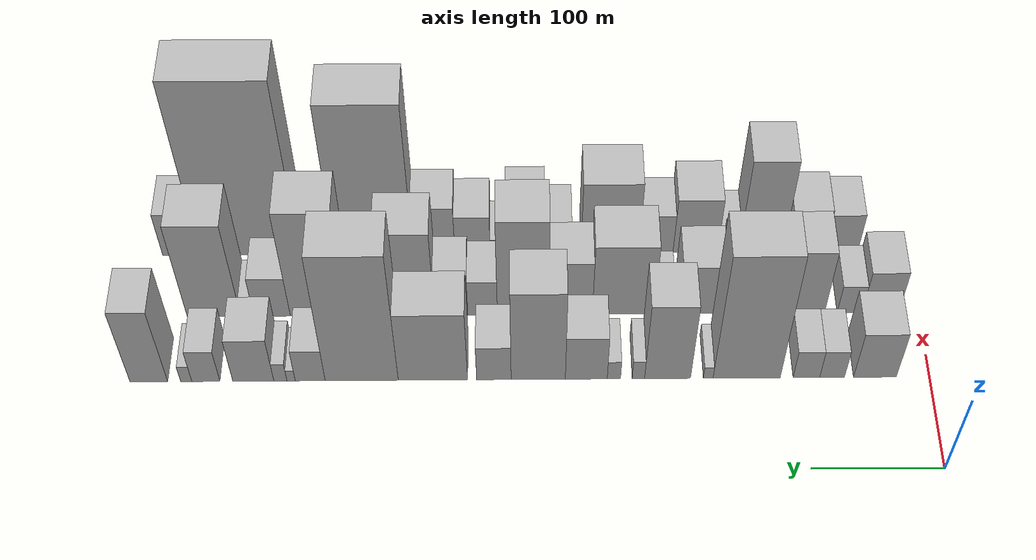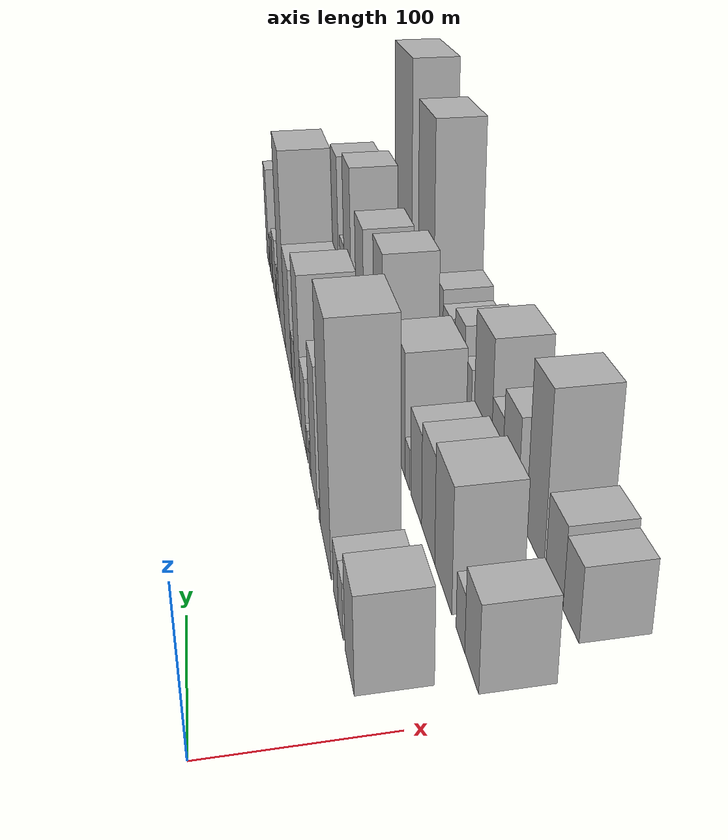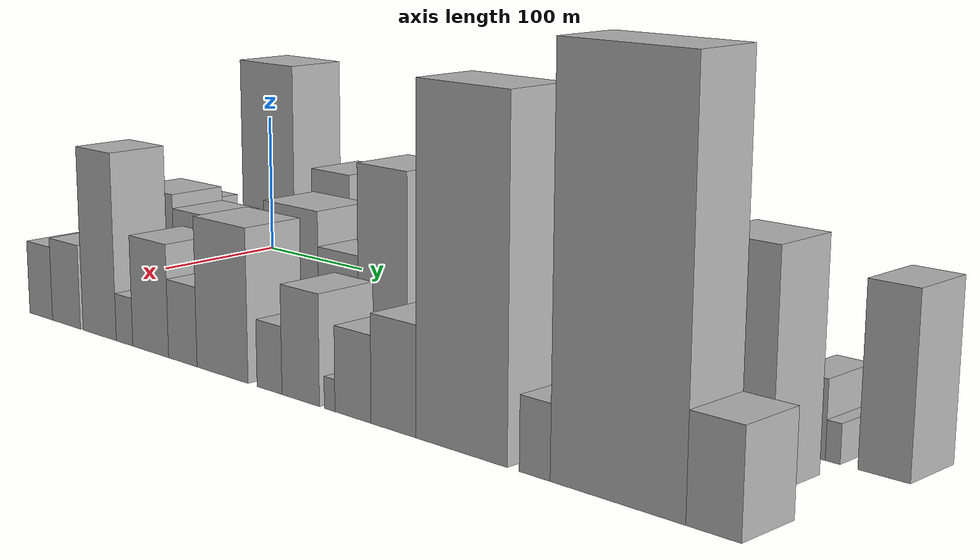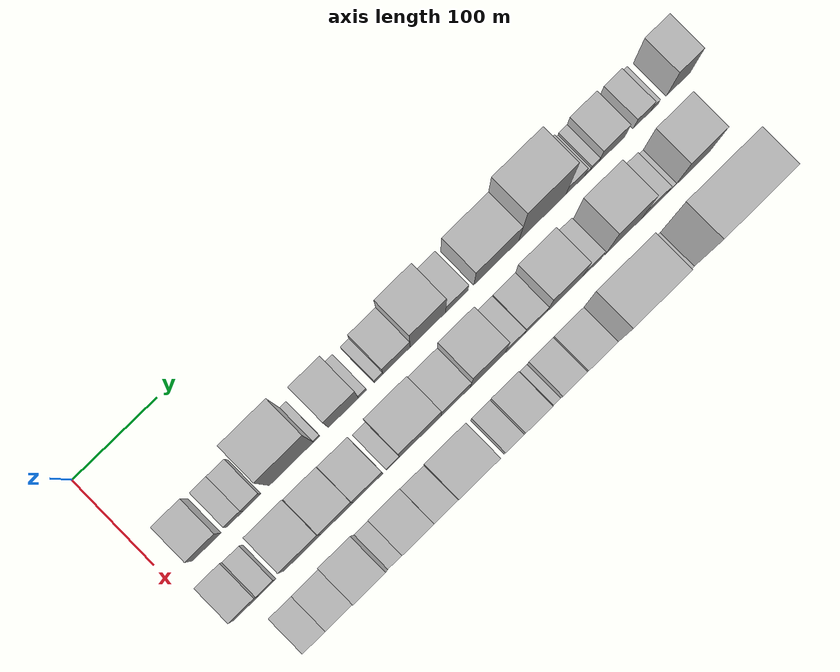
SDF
<sdf version="1.6">
 <world name="default">
  <model name="building_18">
   <static>1</static>
   <pose>100.0000 42.4086 0 0.000000 0.000000 0.000000</pose>
   <link name="link">
    <pose>0 0 30.00 0 0 0</pose>
    <collision name="collision"><geometry><box><size>40.0000 33.1775 60.0000</size></box></geometry></collision>
    <visual name="visual">
     <cast_shadows>0</cast_shadows>
     <geometry><box><size>40.0000 33.1775 60.0000</size></box></geometry>
     <material>
      <script>
       <uri>model://HANNAS_wall/materials/scripts</uri>
       <uri>model://HANNAS_wall/materials/textures</uri>
       <name>vrc/HANNAS_wall</name>
      </script>
     </material>
    </visual>
   </link>
  </model>
  <model name="building_19">
   <static>1</static>
   <pose>100.0000 75.5982 0 0.000000 0.000000 0.000000</pose>
   <link name="link">
    <pose>0 0 18.00 0 0 0</pose>
    <collision name="collision"><geometry><box><size>40.0000 19.2016 36.0000</size></box></geometry></collision>
    <visual name="visual">
     <cast_shadows>0</cast_shadows>
     <geometry><box><size>40.0000 19.2016 36.0000</size></box></geometry>
     <material>
      <script>
       <uri>model://HANNAS_wall/materials/scripts</uri>
       <uri>model://HANNAS_wall/materials/textures</uri>
       <name>vrc/HANNAS_wall</name>
      </script>
     </material>
    </visual>
   </link>
  </model>
  <model name="building_20">
   <static>1</static>
   <pose>100.0000 95.5008 0 0.000000 0.000000 0.000000</pose>
   <link name="link">
    <pose>0 0 18.00 0 0 0</pose>
    <collision name="collision"><geometry><box><size>40.0000 20.6037 36.0000</size></box></geometry></collision>
    <visual name="visual">
     <cast_shadows>0</cast_shadows>
     <geometry><box><size>40.0000 20.6037 36.0000</size></box></geometry>
     <material>
      <script>
       <uri>model://HANNAS_wall/materials/scripts</uri>
       <uri>model://HANNAS_wall/materials/textures</uri>
       <name>vrc/HANNAS_wall</name>
      </script>
     </material>
    </visual>
   </link>
  </model>
  <model name="building_21">
   <static>1</static>
   <pose>100.0000 141.8092 0 0.000000 0.000000 0.000000</pose>
   <link name="link">
    <pose>0 0 81.00 0 0 0</pose>
    <collision name="collision"><geometry><box><size>40.0000 52.0130 162.0000</size></box></geometry></collision>
    <visual name="visual">
     <cast_shadows>0</cast_shadows>
     <geometry><box><size>40.0000 52.0130 162.0000</size></box></geometry>
     <material>
      <script>
       <uri>model://HANNAS_wall/materials/scripts</uri>
       <uri>model://HANNAS_wall/materials/textures</uri>
       <name>vrc/HANNAS_wall</name>
      </script>
     </material>
    </visual>
   </link>
  </model>
  <model name="building_22">
   <static>1</static>
   <pose>100.0000 171.5599 0 0.000000 0.000000 0.000000</pose>
   <link name="link">
    <pose>0 0 7.50 0 0 0</pose>
    <collision name="collision"><geometry><box><size>40.0000 7.4884 15.0000</size></box></geometry></collision>
    <visual name="visual">
     <cast_shadows>0</cast_shadows>
     <geometry><box><size>40.0000 7.4884 15.0000</size></box></geometry>
     <material>
      <script>
       <uri>model://HANNAS_wall/materials/scripts</uri>
       <uri>model://HANNAS_wall/materials/textures</uri>
       <name>vrc/HANNAS_wall</name>
      </script>
     </material>
    </visual>
   </link>
  </model>
  <model name="building_23">
   <static>1</static>
   <pose>100.0000 203.0476 0 0.000000 0.000000 0.000000</pose>
   <link name="link">
    <pose>0 0 49.50 0 0 0</pose>
    <collision name="collision"><geometry><box><size>40.0000 35.4869 99.0000</size></box></geometry></collision>
    <visual name="visual">
     <cast_shadows>0</cast_shadows>
     <geometry><box><size>40.0000 35.4869 99.0000</size></box></geometry>
     <material>
      <script>
       <uri>model://HANNAS_wall/materials/scripts</uri>
       <uri>model://HANNAS_wall/materials/textures</uri>
       <name>vrc/HANNAS_wall</name>
      </script>
     </material>
    </visual>
   </link>
  </model>
  <model name="building_24">
   <static>1</static>
   <pose>100.0000 225.6169 0 0.000000 0.000000 0.000000</pose>
   <link name="link">
    <pose>0 0 12.00 0 0 0</pose>
    <collision name="collision"><geometry><box><size>40.0000 9.6518 24.0000</size></box></geometry></collision>
    <visual name="visual">
     <cast_shadows>0</cast_shadows>
     <geometry><box><size>40.0000 9.6518 24.0000</size></box></geometry>
     <material>
      <script>
       <uri>model://HANNAS_wall/materials/scripts</uri>
       <uri>model://HANNAS_wall/materials/textures</uri>
       <name>vrc/HANNAS_wall</name>
      </script>
     </material>
    </visual>
   </link>
  </model>
  <model name="building_25">
   <static>1</static>
   <pose>100.0000 244.6090 0 0.000000 0.000000 0.000000</pose>
   <link name="link">
    <pose>0 0 12.00 0 0 0</pose>
    <collision name="collision"><geometry><box><size>40.0000 10.3324 24.0000</size></box></geometry></collision>
    <visual name="visual">
     <cast_shadows>0</cast_shadows>
     <geometry><box><size>40.0000 10.3324 24.0000</size></box></geometry>
     <material>
      <script>
       <uri>model://HANNAS_wall/materials/scripts</uri>
       <uri>model://HANNAS_wall/materials/textures</uri>
       <name>vrc/HANNAS_wall</name>
      </script>
     </material>
    </visual>
   </link>
  </model>
  <model name="building_26">
   <static>1</static>
   <pose>100.0000 265.9587 0 0.000000 0.000000 0.000000</pose>
   <link name="link">
    <pose>0 0 28.50 0 0 0</pose>
    <collision name="collision"><geometry><box><size>40.0000 32.3671 57.0000</size></box></geometry></collision>
    <visual name="visual">
     <cast_shadows>0</cast_shadows>
     <geometry><box><size>40.0000 32.3671 57.0000</size></box></geometry>
     <material>
      <script>
       <uri>model://HANNAS_wall/materials/scripts</uri>
       <uri>model://HANNAS_wall/materials/textures</uri>
       <name>vrc/HANNAS_wall</name>
      </script>
     </material>
    </visual>
   </link>
  </model>
  <model name="building_27">
   <static>1</static>
   <pose>100.0000 303.1173 0 0.000000 0.000000 0.000000</pose>
   <link name="link">
    <pose>0 0 58.50 0 0 0</pose>
    <collision name="collision"><geometry><box><size>40.0000 41.9502 117.0000</size></box></geometry></collision>
    <visual name="visual">
     <cast_shadows>0</cast_shadows>
     <geometry><box><size>40.0000 41.9502 117.0000</size></box></geometry>
     <material>
      <script>
       <uri>model://HANNAS_wall/materials/scripts</uri>
       <uri>model://HANNAS_wall/materials/textures</uri>
       <name>vrc/HANNAS_wall</name>
      </script>
     </material>
    </visual>
   </link>
  </model>
  <model name="building_28">
   <static>1</static>
   <pose>100.0000 337.4223 0 0.000000 0.000000 0.000000</pose>
   <link name="link">
    <pose>0 0 22.50 0 0 0</pose>
    <collision name="collision"><geometry><box><size>40.0000 26.6598 45.0000</size></box></geometry></collision>
    <visual name="visual">
     <cast_shadows>0</cast_shadows>
     <geometry><box><size>40.0000 26.6598 45.0000</size></box></geometry>
     <material>
      <script>
       <uri>model://HANNAS_wall/materials/scripts</uri>
       <uri>model://HANNAS_wall/materials/textures</uri>
       <name>vrc/HANNAS_wall</name>
      </script>
     </material>
    </visual>
   </link>
  </model>
  <model name="building_29">
   <static>1</static>
   <pose>100.0000 384.5578 0 0.000000 0.000000 0.000000</pose>
   <link name="link">
    <pose>0 0 45.00 0 0 0</pose>
    <collision name="collision"><geometry><box><size>40.0000 53.6112 90.0000</size></box></geometry></collision>
    <visual name="visual">
     <cast_shadows>0</cast_shadows>
     <geometry><box><size>40.0000 53.6112 90.0000</size></box></geometry>
     <material>
      <script>
       <uri>model://HANNAS_wall/materials/scripts</uri>
       <uri>model://HANNAS_wall/materials/textures</uri>
       <name>vrc/HANNAS_wall</name>
      </script>
     </material>
    </visual>
   </link>
  </model>
  <model name="building_30">
   <static>1</static>
   <pose>100.0000 439.6174 0 0.000000 0.000000 0.000000</pose>
   <link name="link">
    <pose>0 0 82.50 0 0 0</pose>
    <collision name="collision"><geometry><box><size>40.0000 56.5080 165.0000</size></box></geometry></collision>
    <visual name="visual">
     <cast_shadows>0</cast_shadows>
     <geometry><box><size>40.0000 56.5080 165.0000</size></box></geometry>
     <material>
      <script>
       <uri>model://HANNAS_wall/materials/scripts</uri>
       <uri>model://HANNAS_wall/materials/textures</uri>
       <name>vrc/HANNAS_wall</name>
      </script>
     </material>
    </visual>
   </link>
  </model>
  <model name="building_31">
   <static>1</static>
   <pose>100.0000 479.4380 0 0.000000 0.000000 0.000000</pose>
   <link name="link">
    <pose>0 0 21.00 0 0 0</pose>
    <collision name="collision"><geometry><box><size>40.0000 23.1332 42.0000</size></box></geometry></collision>
    <visual name="visual">
     <cast_shadows>0</cast_shadows>
     <geometry><box><size>40.0000 23.1332 42.0000</size></box></geometry>
     <material>
      <script>
       <uri>model://HANNAS_wall/materials/scripts</uri>
       <uri>model://HANNAS_wall/materials/textures</uri>
       <name>vrc/HANNAS_wall</name>
      </script>
     </material>
    </visual>
   </link>
  </model>
  <model name="building_32">
   <static>1</static>
   <pose>100.0000 494.2023 0 0.000000 0.000000 0.000000</pose>
   <link name="link">
    <pose>0 0 7.50 0 0 0</pose>
    <collision name="collision"><geometry><box><size>40.0000 6.3954 15.0000</size></box></geometry></collision>
    <visual name="visual">
     <cast_shadows>0</cast_shadows>
     <geometry><box><size>40.0000 6.3954 15.0000</size></box></geometry>
     <material>
      <script>
       <uri>model://HANNAS_wall/materials/scripts</uri>
       <uri>model://HANNAS_wall/materials/textures</uri>
       <name>vrc/HANNAS_wall</name>
      </script>
     </material>
    </visual>
   </link>
  </model>
  <model name="building_33">
   <static>1</static>
   <pose>100.0000 502.4533 0 0.000000 0.000000 0.000000</pose>
   <link name="link">
    <pose>0 0 12.00 0 0 0</pose>
    <collision name="collision"><geometry><box><size>40.0000 10.1065 24.0000</size></box></geometry></collision>
    <visual name="visual">
     <cast_shadows>0</cast_shadows>
     <geometry><box><size>40.0000 10.1065 24.0000</size></box></geometry>
     <material>
      <script>
       <uri>model://HANNAS_wall/materials/scripts</uri>
       <uri>model://HANNAS_wall/materials/textures</uri>
       <name>vrc/HANNAS_wall</name>
      </script>
     </material>
    </visual>
   </link>
  </model>
  <model name="building_34">
   <static>1</static>
   <pose>100.0000 523.3596 0 0.000000 0.000000 0.000000</pose>
   <link name="link">
    <pose>0 0 28.50 0 0 0</pose>
    <collision name="collision"><geometry><box><size>40.0000 31.7062 57.0000</size></box></geometry></collision>
    <visual name="visual">
     <cast_shadows>0</cast_shadows>
     <geometry><box><size>40.0000 31.7062 57.0000</size></box></geometry>
     <material>
      <script>
       <uri>model://HANNAS_wall/materials/scripts</uri>
       <uri>model://HANNAS_wall/materials/textures</uri>
       <name>vrc/HANNAS_wall</name>
      </script>
     </material>
    </visual>
   </link>
  </model>
  <model name="building_35">
   <static>1</static>
   <pose>100.0000 560.0484 0 0.000000 0.000000 0.000000</pose>
   <link name="link">
    <pose>0 0 21.00 0 0 0</pose>
    <collision name="collision"><geometry><box><size>40.0000 21.6714 42.0000</size></box></geometry></collision>
    <visual name="visual">
     <cast_shadows>0</cast_shadows>
     <geometry><box><size>40.0000 21.6714 42.0000</size></box></geometry>
     <material>
      <script>
       <uri>model://HANNAS_wall/materials/scripts</uri>
       <uri>model://HANNAS_wall/materials/textures</uri>
       <name>vrc/HANNAS_wall</name>
      </script>
     </material>
    </visual>
   </link>
  </model>
  <model name="building_36">
   <static>1</static>
   <pose>100.0000 575.2125 0 0.000000 0.000000 0.000000</pose>
   <link name="link">
    <pose>0 0 10.50 0 0 0</pose>
    <collision name="collision"><geometry><box><size>40.0000 8.6566 21.0000</size></box></geometry></collision>
    <visual name="visual">
     <cast_shadows>0</cast_shadows>
     <geometry><box><size>40.0000 8.6566 21.0000</size></box></geometry>
     <material>
      <script>
       <uri>model://HANNAS_wall/materials/scripts</uri>
       <uri>model://HANNAS_wall/materials/textures</uri>
       <name>vrc/HANNAS_wall</name>
      </script>
     </material>
    </visual>
   </link>
  </model>
  <model name="building_37">
   <static>1</static>
   <pose>100.0000 604.0534 0 0.000000 0.000000 0.000000</pose>
   <link name="link">
    <pose>0 0 48.00 0 0 0</pose>
    <collision name="collision"><geometry><box><size>40.0000 29.0252 96.0000</size></box></geometry></collision>
    <visual name="visual">
     <cast_shadows>0</cast_shadows>
     <geometry><box><size>40.0000 29.0252 96.0000</size></box></geometry>
     <material>
      <script>
       <uri>model://HANNAS_wall/materials/scripts</uri>
       <uri>model://HANNAS_wall/materials/textures</uri>
       <name>vrc/HANNAS_wall</name>
      </script>
     </material>
    </visual>
   </link>
  </model>
  <model name="building_56">
   <static>1</static>
   <pose>160.0000 30.6100 0 0.000000 0.000000 0.000000</pose>
   <link name="link">
    <pose>0 0 27.00 0 0 0</pose>
    <collision name="collision"><geometry><box><size>40.0000 29.2214 54.0000</size></box></geometry></collision>
    <visual name="visual">
     <cast_shadows>0</cast_shadows>
     <geometry><box><size>40.0000 29.2214 54.0000</size></box></geometry>
     <material>
      <script>
       <uri>model://HANNAS_wall/materials/scripts</uri>
       <uri>model://HANNAS_wall/materials/textures</uri>
       <name>vrc/HANNAS_wall</name>
      </script>
     </material>
    </visual>
   </link>
  </model>
  <model name="building_57">
   <static>1</static>
   <pose>160.0000 55.1011 0 0.000000 0.000000 0.000000</pose>
   <link name="link">
    <pose>0 0 18.00 0 0 0</pose>
    <collision name="collision"><geometry><box><size>40.0000 19.7609 36.0000</size></box></geometry></collision>
    <visual name="visual">
     <cast_shadows>0</cast_shadows>
     <geometry><box><size>40.0000 19.7609 36.0000</size></box></geometry>
     <material>
      <script>
       <uri>model://HANNAS_wall/materials/scripts</uri>
       <uri>model://HANNAS_wall/materials/textures</uri>
       <name>vrc/HANNAS_wall</name>
      </script>
     </material>
    </visual>
   </link>
  </model>
  <model name="building_58">
   <static>1</static>
   <pose>160.0000 96.8129 0 0.000000 0.000000 0.000000</pose>
   <link name="link">
    <pose>0 0 40.50 0 0 0</pose>
    <collision name="collision"><geometry><box><size>40.0000 43.6627 81.0000</size></box></geometry></collision>
    <visual name="visual">
     <cast_shadows>0</cast_shadows>
     <geometry><box><size>40.0000 43.6627 81.0000</size></box></geometry>
     <material>
      <script>
       <uri>model://HANNAS_wall/materials/scripts</uri>
       <uri>model://HANNAS_wall/materials/textures</uri>
       <name>vrc/HANNAS_wall</name>
      </script>
     </material>
    </visual>
   </link>
  </model>
  <model name="building_59">
   <static>1</static>
   <pose>160.0000 137.5337 0 0.000000 0.000000 0.000000</pose>
   <link name="link">
    <pose>0 0 36.00 0 0 0</pose>
    <collision name="collision"><geometry><box><size>40.0000 37.7788 72.0000</size></box></geometry></collision>
    <visual name="visual">
     <cast_shadows>0</cast_shadows>
     <geometry><box><size>40.0000 37.7788 72.0000</size></box></geometry>
     <material>
      <script>
       <uri>model://HANNAS_wall/materials/scripts</uri>
       <uri>model://HANNAS_wall/materials/textures</uri>
       <name>vrc/HANNAS_wall</name>
      </script>
     </material>
    </visual>
   </link>
  </model>
  <model name="building_60">
   <static>1</static>
   <pose>160.0000 173.7753 0 0.000000 0.000000 0.000000</pose>
   <link name="link">
    <pose>0 0 31.50 0 0 0</pose>
    <collision name="collision"><geometry><box><size>40.0000 34.7045 63.0000</size></box></geometry></collision>
    <visual name="visual">
     <cast_shadows>0</cast_shadows>
     <geometry><box><size>40.0000 34.7045 63.0000</size></box></geometry>
     <material>
      <script>
       <uri>model://HANNAS_wall/materials/scripts</uri>
       <uri>model://HANNAS_wall/materials/textures</uri>
       <name>vrc/HANNAS_wall</name>
      </script>
     </material>
    </visual>
   </link>
  </model>
  <model name="building_61">
   <static>1</static>
   <pose>160.0000 202.7913 0 0.000000 0.000000 0.000000</pose>
   <link name="link">
    <pose>0 0 15.00 0 0 0</pose>
    <collision name="collision"><geometry><box><size>40.0000 15.3275 30.0000</size></box></geometry></collision>
    <visual name="visual">
     <cast_shadows>0</cast_shadows>
     <geometry><box><size>40.0000 15.3275 30.0000</size></box></geometry>
     <material>
      <script>
       <uri>model://HANNAS_wall/materials/scripts</uri>
       <uri>model://HANNAS_wall/materials/textures</uri>
       <name>vrc/HANNAS_wall</name>
      </script>
     </material>
    </visual>
   </link>
  </model>
  <model name="building_62">
   <static>1</static>
   <pose>160.0000 234.9913 0 0.000000 0.000000 0.000000</pose>
   <link name="link">
    <pose>0 0 45.00 0 0 0</pose>
    <collision name="collision"><geometry><box><size>40.0000 49.0724 90.0000</size></box></geometry></collision>
    <visual name="visual">
     <cast_shadows>0</cast_shadows>
     <geometry><box><size>40.0000 49.0724 90.0000</size></box></geometry>
     <material>
      <script>
       <uri>model://HANNAS_wall/materials/scripts</uri>
       <uri>model://HANNAS_wall/materials/textures</uri>
       <name>vrc/HANNAS_wall</name>
      </script>
     </material>
    </visual>
   </link>
  </model>
  <model name="building_63">
   <static>1</static>
   <pose>160.0000 276.8434 0 0.000000 0.000000 0.000000</pose>
   <link name="link">
    <pose>0 0 34.50 0 0 0</pose>
    <collision name="collision"><geometry><box><size>40.0000 34.6319 69.0000</size></box></geometry></collision>
    <visual name="visual">
     <cast_shadows>0</cast_shadows>
     <geometry><box><size>40.0000 34.6319 69.0000</size></box></geometry>
     <material>
      <script>
       <uri>model://HANNAS_wall/materials/scripts</uri>
       <uri>model://HANNAS_wall/materials/textures</uri>
       <name>vrc/HANNAS_wall</name>
      </script>
     </material>
    </visual>
   </link>
  </model>
  <model name="building_64">
   <static>1</static>
   <pose>160.0000 314.5495 0 0.000000 0.000000 0.000000</pose>
   <link name="link">
    <pose>0 0 61.50 0 0 0</pose>
    <collision name="collision"><geometry><box><size>40.0000 40.7803 123.0000</size></box></geometry></collision>
    <visual name="visual">
     <cast_shadows>0</cast_shadows>
     <geometry><box><size>40.0000 40.7803 123.0000</size></box></geometry>
     <material>
      <script>
       <uri>model://HANNAS_wall/materials/scripts</uri>
       <uri>model://HANNAS_wall/materials/textures</uri>
       <name>vrc/HANNAS_wall</name>
      </script>
     </material>
    </visual>
   </link>
  </model>
  <model name="building_65">
   <static>1</static>
   <pose>160.0000 346.6712 0 0.000000 0.000000 0.000000</pose>
   <link name="link">
    <pose>0 0 22.50 0 0 0</pose>
    <collision name="collision"><geometry><box><size>40.0000 23.4631 45.0000</size></box></geometry></collision>
    <visual name="visual">
     <cast_shadows>0</cast_shadows>
     <geometry><box><size>40.0000 23.4631 45.0000</size></box></geometry>
     <material>
      <script>
       <uri>model://HANNAS_wall/materials/scripts</uri>
       <uri>model://HANNAS_wall/materials/textures</uri>
       <name>vrc/HANNAS_wall</name>
      </script>
     </material>
    </visual>
   </link>
  </model>
  <model name="building_66">
   <static>1</static>
   <pose>160.0000 371.6030 0 0.000000 0.000000 0.000000</pose>
   <link name="link">
    <pose>0 0 25.50 0 0 0</pose>
    <collision name="collision"><geometry><box><size>40.0000 26.4003 51.0000</size></box></geometry></collision>
    <visual name="visual">
     <cast_shadows>0</cast_shadows>
     <geometry><box><size>40.0000 26.4003 51.0000</size></box></geometry>
     <material>
      <script>
       <uri>model://HANNAS_wall/materials/scripts</uri>
       <uri>model://HANNAS_wall/materials/textures</uri>
       <name>vrc/HANNAS_wall</name>
      </script>
     </material>
    </visual>
   </link>
  </model>
  <model name="building_67">
   <static>1</static>
   <pose>160.0000 406.3405 0 0.000000 0.000000 0.000000</pose>
   <link name="link">
    <pose>0 0 54.00 0 0 0</pose>
    <collision name="collision"><geometry><box><size>40.0000 43.0747 108.0000</size></box></geometry></collision>
    <visual name="visual">
     <cast_shadows>0</cast_shadows>
     <geometry><box><size>40.0000 43.0747 108.0000</size></box></geometry>
     <material>
      <script>
       <uri>model://HANNAS_wall/materials/scripts</uri>
       <uri>model://HANNAS_wall/materials/textures</uri>
       <name>vrc/HANNAS_wall</name>
      </script>
     </material>
    </visual>
   </link>
  </model>
  <model name="building_68">
   <static>1</static>
   <pose>160.0000 439.6170 0 0.000000 0.000000 0.000000</pose>
   <link name="link">
    <pose>0 0 22.50 0 0 0</pose>
    <collision name="collision"><geometry><box><size>40.0000 23.4783 45.0000</size></box></geometry></collision>
    <visual name="visual">
     <cast_shadows>0</cast_shadows>
     <geometry><box><size>40.0000 23.4783 45.0000</size></box></geometry>
     <material>
      <script>
       <uri>model://HANNAS_wall/materials/scripts</uri>
       <uri>model://HANNAS_wall/materials/textures</uri>
       <name>vrc/HANNAS_wall</name>
      </script>
     </material>
    </visual>
   </link>
  </model>
  <model name="building_69">
   <static>1</static>
   <pose>160.0000 477.2513 0 0.000000 0.000000 0.000000</pose>
   <link name="link">
    <pose>0 0 67.50 0 0 0</pose>
    <collision name="collision"><geometry><box><size>40.0000 43.7903 135.0000</size></box></geometry></collision>
    <visual name="visual">
     <cast_shadows>0</cast_shadows>
     <geometry><box><size>40.0000 43.7903 135.0000</size></box></geometry>
     <material>
      <script>
       <uri>model://HANNAS_wall/materials/scripts</uri>
       <uri>model://HANNAS_wall/materials/textures</uri>
       <name>vrc/HANNAS_wall</name>
      </script>
     </material>
    </visual>
   </link>
  </model>
  <model name="building_70">
   <static>1</static>
   <pose>160.0000 513.6098 0 0.000000 0.000000 0.000000</pose>
   <link name="link">
    <pose>0 0 25.50 0 0 0</pose>
    <collision name="collision"><geometry><box><size>40.0000 28.9268 51.0000</size></box></geometry></collision>
    <visual name="visual">
     <cast_shadows>0</cast_shadows>
     <geometry><box><size>40.0000 28.9268 51.0000</size></box></geometry>
     <material>
      <script>
       <uri>model://HANNAS_wall/materials/scripts</uri>
       <uri>model://HANNAS_wall/materials/textures</uri>
       <name>vrc/HANNAS_wall</name>
      </script>
     </material>
    </visual>
   </link>
  </model>
  <model name="building_71">
   <static>1</static>
   <pose>160.0000 533.3174 0 0.000000 0.000000 0.000000</pose>
   <link name="link">
    <pose>0 0 10.50 0 0 0</pose>
    <collision name="collision"><geometry><box><size>40.0000 10.4886 21.0000</size></box></geometry></collision>
    <visual name="visual">
     <cast_shadows>0</cast_shadows>
     <geometry><box><size>40.0000 10.4886 21.0000</size></box></geometry>
     <material>
      <script>
       <uri>model://HANNAS_wall/materials/scripts</uri>
       <uri>model://HANNAS_wall/materials/textures</uri>
       <name>vrc/HANNAS_wall</name>
      </script>
     </material>
    </visual>
   </link>
  </model>
  <model name="building_72">
   <static>1</static>
   <pose>160.0000 559.7337 0 0.000000 0.000000 0.000000</pose>
   <link name="link">
    <pose>0 0 60.00 0 0 0</pose>
    <collision name="collision"><geometry><box><size>40.0000 42.3439 120.0000</size></box></geometry></collision>
    <visual name="visual">
     <cast_shadows>0</cast_shadows>
     <geometry><box><size>40.0000 42.3439 120.0000</size></box></geometry>
     <material>
      <script>
       <uri>model://HANNAS_wall/materials/scripts</uri>
       <uri>model://HANNAS_wall/materials/textures</uri>
       <name>vrc/HANNAS_wall</name>
      </script>
     </material>
    </visual>
   </link>
  </model>
  <model name="building_90">
   <static>1</static>
   <pose>220.0000 54.6511 0 0.000000 0.000000 0.000000</pose>
   <link name="link">
    <pose>0 0 24.00 0 0 0</pose>
    <collision name="collision"><geometry><box><size>40.0000 26.6044 48.0000</size></box></geometry></collision>
    <visual name="visual">
     <cast_shadows>0</cast_shadows>
     <geometry><box><size>40.0000 26.6044 48.0000</size></box></geometry>
     <material>
      <script>
       <uri>model://HANNAS_wall/materials/scripts</uri>
       <uri>model://HANNAS_wall/materials/textures</uri>
       <name>vrc/HANNAS_wall</name>
      </script>
     </material>
    </visual>
   </link>
  </model>
  <model name="building_91">
   <static>1</static>
   <pose>220.0000 83.7469 0 0.000000 0.000000 0.000000</pose>
   <link name="link">
    <pose>0 0 27.00 0 0 0</pose>
    <collision name="collision"><geometry><box><size>40.0000 31.5872 54.0000</size></box></geometry></collision>
    <visual name="visual">
     <cast_shadows>0</cast_shadows>
     <geometry><box><size>40.0000 31.5872 54.0000</size></box></geometry>
     <material>
      <script>
       <uri>model://HANNAS_wall/materials/scripts</uri>
       <uri>model://HANNAS_wall/materials/textures</uri>
       <name>vrc/HANNAS_wall</name>
      </script>
     </material>
    </visual>
   </link>
  </model>
  <model name="building_92">
   <static>1</static>
   <pose>220.0000 120.5384 0 0.000000 0.000000 0.000000</pose>
   <link name="link">
    <pose>0 0 58.50 0 0 0</pose>
    <collision name="collision"><geometry><box><size>40.0000 35.9959 117.0000</size></box></geometry></collision>
    <visual name="visual">
     <cast_shadows>0</cast_shadows>
     <geometry><box><size>40.0000 35.9959 117.0000</size></box></geometry>
     <material>
      <script>
       <uri>model://HANNAS_wall/materials/scripts</uri>
       <uri>model://HANNAS_wall/materials/textures</uri>
       <name>vrc/HANNAS_wall</name>
      </script>
     </material>
    </visual>
   </link>
  </model>
  <model name="building_93">
   <static>1</static>
   <pose>220.0000 147.1733 0 0.000000 0.000000 0.000000</pose>
   <link name="link">
    <pose>0 0 15.00 0 0 0</pose>
    <collision name="collision"><geometry><box><size>40.0000 17.2739 30.0000</size></box></geometry></collision>
    <visual name="visual">
     <cast_shadows>0</cast_shadows>
     <geometry><box><size>40.0000 17.2739 30.0000</size></box></geometry>
     <material>
      <script>
       <uri>model://HANNAS_wall/materials/scripts</uri>
       <uri>model://HANNAS_wall/materials/textures</uri>
       <name>vrc/HANNAS_wall</name>
      </script>
     </material>
    </visual>
   </link>
  </model>
  <model name="building_94">
   <static>1</static>
   <pose>220.0000 173.9751 0 0.000000 0.000000 0.000000</pose>
   <link name="link">
    <pose>0 0 34.50 0 0 0</pose>
    <collision name="collision"><geometry><box><size>40.0000 36.3297 69.0000</size></box></geometry></collision>
    <visual name="visual">
     <cast_shadows>0</cast_shadows>
     <geometry><box><size>40.0000 36.3297 69.0000</size></box></geometry>
     <material>
      <script>
       <uri>model://HANNAS_wall/materials/scripts</uri>
       <uri>model://HANNAS_wall/materials/textures</uri>
       <name>vrc/HANNAS_wall</name>
      </script>
     </material>
    </visual>
   </link>
  </model>
  <model name="building_95">
   <static>1</static>
   <pose>220.0000 205.9915 0 0.000000 0.000000 0.000000</pose>
   <link name="link">
    <pose>0 0 24.00 0 0 0</pose>
    <collision name="collision"><geometry><box><size>40.0000 27.7031 48.0000</size></box></geometry></collision>
    <visual name="visual">
     <cast_shadows>0</cast_shadows>
     <geometry><box><size>40.0000 27.7031 48.0000</size></box></geometry>
     <material>
      <script>
       <uri>model://HANNAS_wall/materials/scripts</uri>
       <uri>model://HANNAS_wall/materials/textures</uri>
       <name>vrc/HANNAS_wall</name>
      </script>
     </material>
    </visual>
   </link>
  </model>
  <model name="building_96">
   <static>1</static>
   <pose>220.0000 243.4510 0 0.000000 0.000000 0.000000</pose>
   <link name="link">
    <pose>0 0 45.00 0 0 0</pose>
    <collision name="collision"><geometry><box><size>40.0000 47.2161 90.0000</size></box></geometry></collision>
    <visual name="visual">
     <cast_shadows>0</cast_shadows>
     <geometry><box><size>40.0000 47.2161 90.0000</size></box></geometry>
     <material>
      <script>
       <uri>model://HANNAS_wall/materials/scripts</uri>
       <uri>model://HANNAS_wall/materials/textures</uri>
       <name>vrc/HANNAS_wall</name>
      </script>
     </material>
    </visual>
   </link>
  </model>
  <model name="building_97">
   <static>1</static>
   <pose>220.0000 285.9430 0 0.000000 0.000000 0.000000</pose>
   <link name="link">
    <pose>0 0 19.50 0 0 0</pose>
    <collision name="collision"><geometry><box><size>40.0000 21.7679 39.0000</size></box></geometry></collision>
    <visual name="visual">
     <cast_shadows>0</cast_shadows>
     <geometry><box><size>40.0000 21.7679 39.0000</size></box></geometry>
     <material>
      <script>
       <uri>model://HANNAS_wall/materials/scripts</uri>
       <uri>model://HANNAS_wall/materials/textures</uri>
       <name>vrc/HANNAS_wall</name>
      </script>
     </material>
    </visual>
   </link>
  </model>
  <model name="building_98">
   <static>1</static>
   <pose>220.0000 312.6535 0 0.000000 0.000000 0.000000</pose>
   <link name="link">
    <pose>0 0 31.50 0 0 0</pose>
    <collision name="collision"><geometry><box><size>40.0000 31.6531 63.0000</size></box></geometry></collision>
    <visual name="visual">
     <cast_shadows>0</cast_shadows>
     <geometry><box><size>40.0000 31.6531 63.0000</size></box></geometry>
     <material>
      <script>
       <uri>model://HANNAS_wall/materials/scripts</uri>
       <uri>model://HANNAS_wall/materials/textures</uri>
       <name>vrc/HANNAS_wall</name>
      </script>
     </material>
    </visual>
   </link>
  </model>
  <model name="building_99">
   <static>1</static>
   <pose>220.0000 336.7651 0 0.000000 0.000000 0.000000</pose>
   <link name="link">
    <pose>0 0 9.00 0 0 0</pose>
    <collision name="collision"><geometry><box><size>40.0000 8.5700 18.0000</size></box></geometry></collision>
    <visual name="visual">
     <cast_shadows>0</cast_shadows>
     <geometry><box><size>40.0000 8.5700 18.0000</size></box></geometry>
     <material>
      <script>
       <uri>model://HANNAS_wall/materials/scripts</uri>
       <uri>model://HANNAS_wall/materials/textures</uri>
       <name>vrc/HANNAS_wall</name>
      </script>
     </material>
    </visual>
   </link>
  </model>
  <model name="building_100">
   <static>1</static>
   <pose>220.0000 355.3512 0 0.000000 0.000000 0.000000</pose>
   <link name="link">
    <pose>0 0 24.00 0 0 0</pose>
    <collision name="collision"><geometry><box><size>40.0000 28.6022 48.0000</size></box></geometry></collision>
    <visual name="visual">
     <cast_shadows>0</cast_shadows>
     <geometry><box><size>40.0000 28.6022 48.0000</size></box></geometry>
     <material>
      <script>
       <uri>model://HANNAS_wall/materials/scripts</uri>
       <uri>model://HANNAS_wall/materials/textures</uri>
       <name>vrc/HANNAS_wall</name>
      </script>
     </material>
    </visual>
   </link>
  </model>
  <model name="building_101">
   <static>1</static>
   <pose>220.0000 386.7176 0 0.000000 0.000000 0.000000</pose>
   <link name="link">
    <pose>0 0 30.00 0 0 0</pose>
    <collision name="collision"><geometry><box><size>40.0000 34.1306 60.0000</size></box></geometry></collision>
    <visual name="visual">
     <cast_shadows>0</cast_shadows>
     <geometry><box><size>40.0000 34.1306 60.0000</size></box></geometry>
     <material>
      <script>
       <uri>model://HANNAS_wall/materials/scripts</uri>
       <uri>model://HANNAS_wall/materials/textures</uri>
       <name>vrc/HANNAS_wall</name>
      </script>
     </material>
    </visual>
   </link>
  </model>
  <model name="building_102">
   <static>1</static>
   <pose>220.0000 435.8035 0 0.000000 0.000000 0.000000</pose>
   <link name="link">
    <pose>0 0 93.00 0 0 0</pose>
    <collision name="collision"><geometry><box><size>40.0000 64.0412 186.0000</size></box></geometry></collision>
    <visual name="visual">
     <cast_shadows>0</cast_shadows>
     <geometry><box><size>40.0000 64.0412 186.0000</size></box></geometry>
     <material>
      <script>
       <uri>model://HANNAS_wall/materials/scripts</uri>
       <uri>model://HANNAS_wall/materials/textures</uri>
       <name>vrc/HANNAS_wall</name>
      </script>
     </material>
    </visual>
   </link>
  </model>
  <model name="building_103">
   <static>1</static>
   <pose>220.0000 485.8551 0 0.000000 0.000000 0.000000</pose>
   <link name="link">
    <pose>0 0 19.50 0 0 0</pose>
    <collision name="collision"><geometry><box><size>40.0000 20.0621 39.0000</size></box></geometry></collision>
    <visual name="visual">
     <cast_shadows>0</cast_shadows>
     <geometry><box><size>40.0000 20.0621 39.0000</size></box></geometry>
     <material>
      <script>
       <uri>model://HANNAS_wall/materials/scripts</uri>
       <uri>model://HANNAS_wall/materials/textures</uri>
       <name>vrc/HANNAS_wall</name>
      </script>
     </material>
    </visual>
   </link>
  </model>
  <model name="building_104">
   <static>1</static>
   <pose>220.0000 536.4368 0 0.000000 0.000000 0.000000</pose>
   <link name="link">
    <pose>0 0 106.50 0 0 0</pose>
    <collision name="collision"><geometry><box><size>40.0000 81.1013 213.0000</size></box></geometry></collision>
    <visual name="visual">
     <cast_shadows>0</cast_shadows>
     <geometry><box><size>40.0000 81.1013 213.0000</size></box></geometry>
     <material>
      <script>
       <uri>model://HANNAS_wall/materials/scripts</uri>
       <uri>model://HANNAS_wall/materials/textures</uri>
       <name>vrc/HANNAS_wall</name>
      </script>
     </material>
    </visual>
   </link>
  </model>
  <model name="building_105">
   <static>1</static>
   <pose>220.0000 592.2062 0 0.000000 0.000000 0.000000</pose>
   <link name="link">
    <pose>0 0 27.00 0 0 0</pose>
    <collision name="collision"><geometry><box><size>40.0000 30.4376 54.0000</size></box></geometry></collision>
    <visual name="visual">
     <cast_shadows>0</cast_shadows>
     <geometry><box><size>40.0000 30.4376 54.0000</size></box></geometry>
     <material>
      <script>
       <uri>model://HANNAS_wall/materials/scripts</uri>
       <uri>model://HANNAS_wall/materials/textures</uri>
       <name>vrc/HANNAS_wall</name>
      </script>
     </material>
    </visual>
   </link>
  </model>
 </world>
</sdf>
